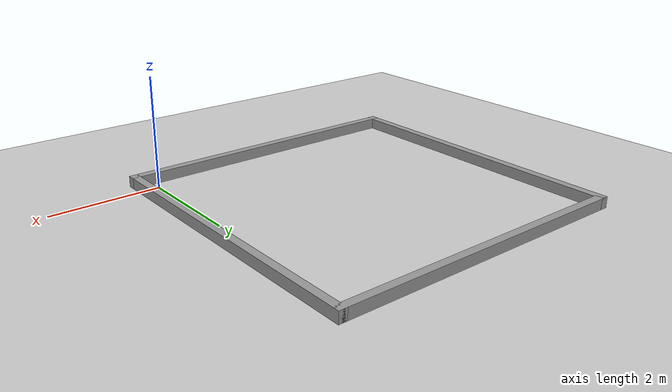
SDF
<sdf version="1.4">
  <world name="default">

    <scene>
      <ambient>0.4 0.4 0.4 1</ambient>
      <background>0.7 0.7 0.7 1</background>
      <shadows>true</shadows>
    </scene>

    <!-- A global light source -->
    <include>
      <uri>model://sun</uri>
    </include>

    <!-- A ground plane -->
    <include>
      <uri>model://ground_plane</uri>
    </include>

    <!-- Square walls 5x5 -->
    <include>
      <uri>model://square_wall_5x5</uri>
      <pose>-2.5 2.5 0 0 0 0</pose>
    </include>

    <physics type="ode">
      <real_time_update_rate>1000.0</real_time_update_rate>
      <max_step_size>0.001</max_step_size>
      <real_time_factor>1</real_time_factor>
      <ode>
        <solver>
          <type>quick</type>
          <iters>150</iters>
          <precon_iters>0</precon_iters>
          <sor>1.400000</sor>
          <use_dynamic_moi_rescaling>1</use_dynamic_moi_rescaling>
        </solver>
        <constraints>
          <cfm>0.00001</cfm>
          <erp>0.2</erp>
          <contact_max_correcting_vel>2000.000000</contact_max_correcting_vel>
          <contact_surface_layer>0.01000</contact_surface_layer>
        </constraints>
      </ode>
    </physics>
  </world>

</sdf>

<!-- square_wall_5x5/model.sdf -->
<sdf version='1.7'>
  <model name='square_wall_5x5'>
    <pose>-2.51 2.31 0 0 -0 0</pose>
    <link name='Wall_0'>
      <collision name='Wall_0_Collision'>
        <geometry>
          <box>
            <size>5.75 0.15 0.2</size>
          </box>
        </geometry>
        <pose>0 0 0.1 0 -0 0</pose>
      </collision>
      <visual name='Wall_0_Visual'>
        <pose>0 0 0.1 0 -0 0</pose>
        <geometry>
          <box>
            <size>5.75 0.15 0.2</size>
          </box>
        </geometry>
        <material>
          <script>
            <uri>file://media/materials/scripts/gazebo.material</uri>
            <name>Gazebo/Grey</name>
          </script>
          <ambient>1 1 1 1</ambient>
        </material>
        <meta>
          <layer>0</layer>
        </meta>
      </visual>
      <pose>-0 -2.8 0 0 -0 0</pose>
    </link>
    <link name='Wall_2'>
      <collision name='Wall_2_Collision'>
        <geometry>
          <box>
            <size>5.75 0.15 0.2</size>
          </box>
        </geometry>
        <pose>0 0 0.1 0 -0 0</pose>
      </collision>
      <visual name='Wall_2_Visual'>
        <pose>0 0 0.1 0 -0 0</pose>
        <geometry>
          <box>
            <size>5.75 0.15 0.2</size>
          </box>
        </geometry>
        <material>
          <script>
            <uri>file://media/materials/scripts/gazebo.material</uri>
            <name>Gazebo/Grey</name>
          </script>
          <ambient>1 1 1 1</ambient>
        </material>
        <meta>
          <layer>0</layer>
        </meta>
      </visual>
      <pose>-2.8 -0 0 0 -0 1.5708</pose>
    </link>
    <link name='Wall_4'>
      <collision name='Wall_4_Collision'>
        <geometry>
          <box>
            <size>5.75 0.15 0.2</size>
          </box>
        </geometry>
        <pose>0 0 0.1 0 -0 0</pose>
      </collision>
      <visual name='Wall_4_Visual'>
        <pose>0 0 0.1 0 -0 0</pose>
        <geometry>
          <box>
            <size>5.75 0.15 0.2</size>
          </box>
        </geometry>
        <material>
          <script>
            <uri>file://media/materials/scripts/gazebo.material</uri>
            <name>Gazebo/Grey</name>
          </script>
          <ambient>1 1 1 1</ambient>
        </material>
        <meta>
          <layer>0</layer>
        </meta>
      </visual>
      <pose>-0 2.8 0 0 -0 0</pose>
    </link>
    <link name='Wall_5'>
      <collision name='Wall_5_Collision'>
        <geometry>
          <box>
            <size>5.75 0.15 0.2</size>
          </box>
        </geometry>
        <pose>0 0 0.1 0 -0 0</pose>
      </collision>
      <visual name='Wall_5_Visual'>
        <pose>0 0 0.1 0 -0 0</pose>
        <geometry>
          <box>
            <size>5.75 0.15 0.2</size>
          </box>
        </geometry>
        <material>
          <script>
            <uri>file://media/materials/scripts/gazebo.material</uri>
            <name>Gazebo/Grey</name>
          </script>
          <ambient>1 1 1 1</ambient>
        </material>
        <meta>
          <layer>0</layer>
        </meta>
      </visual>
      <pose>2.8 -0 0 0 -0 -1.5708</pose>
    </link>
    <static>1</static>
  </model>
</sdf>
